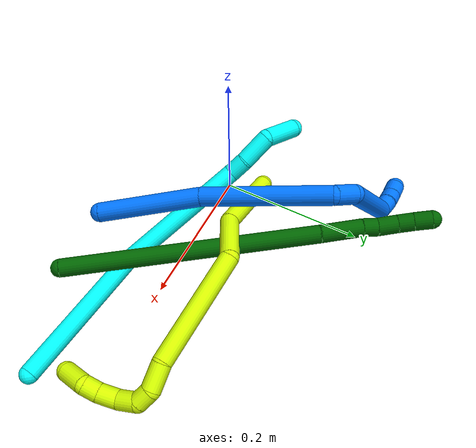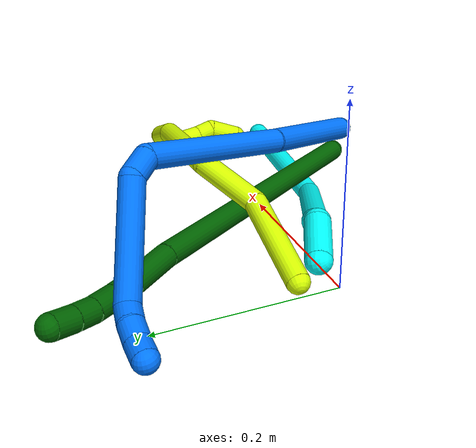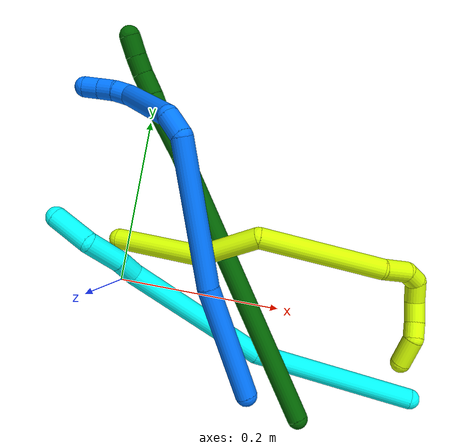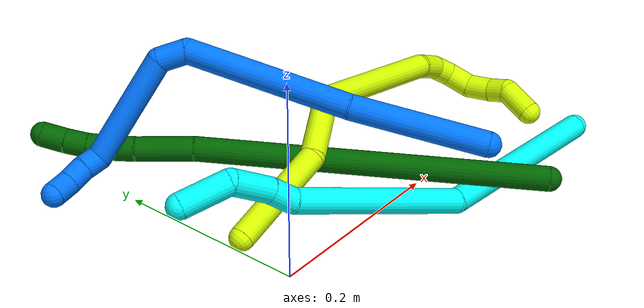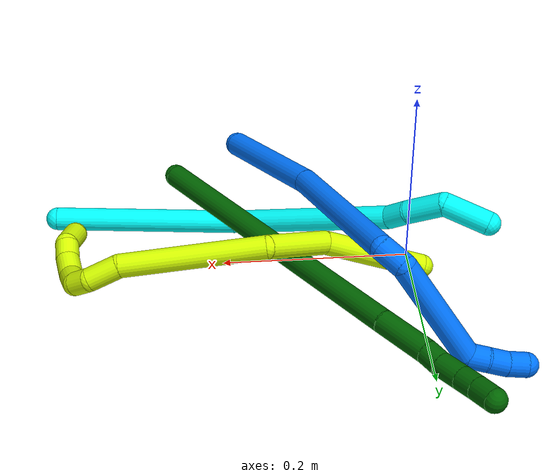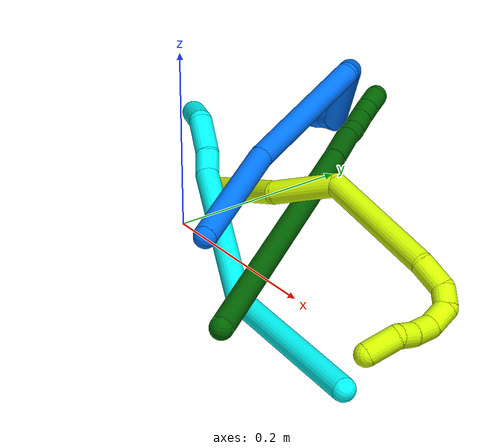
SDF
<sdf version="1.7">
 <world name="default">
  <model name="photoneo_s_sensor">
   <static>1</static>
   <pose>0 0 2 1.57079 1.57079 3.14159</pose>
   <link name="link">
    <inertial><mass>0.1</mass></inertial>
    <sensor name="sensor" type="depth">
     <update_rate>30</update_rate>
     <camera>
      <horizontal_fov>1.22</horizontal_fov>
      <image><width>1920</width><height>1200</height><format>B8G8R8</format></image>
      <clip><near>0.1</near><far>4</far></clip>
      <depth_camera><output>points</output></depth_camera>
     </camera>
     <plugin name="camera_plugin" filename="libgazebo_ros_depth_camera.so">
      <baseline>0.2</baseline>
      <alwaysOn>1</alwaysOn>
      <updateRate>0.0</updateRate>
      <cameraName>camera_ir</cameraName>
      <imageTopicName>/camera/color/image_raw</imageTopicName>
      <cameraInfoTopicName>/camera/color/camera_info</cameraInfoTopicName>
      <depthImageTopicName>/camera/depth/image_raw</depthImageTopicName>
      <depthImageCameraInfoTopicName>/camera/depth/camera_info</depthImageCameraInfoTopicName>
      <pointCloudTopicName>/camera/depth/points</pointCloudTopicName>
      <frameName>fr_optical</frameName>
      <pointCloudCutoff>0.1</pointCloudCutoff>
      <pointCloudCutoffMax>2.0</pointCloudCutoffMax>
      <distortionK1>0</distortionK1>
      <distortionK2>0</distortionK2>
      <distortionK3>0</distortionK3>
      <distortionT1>0</distortionT1>
      <distortionT2>0</distortionT2>
      <CxPrime>0</CxPrime>
      <Cx>0</Cx>
      <Cy>0</Cy>
      <focalLength>0</focalLength>
      <hackBaseline>0</hackBaseline>
     </plugin>
    </sensor>
   </link>
  </model>
  <model name="bin">
   <static>1</static>
   <link name="bottom">
    <collision name="collision-bottom">
     <pose>0 0 -0.01 0 -0 0</pose>
     <geometry><box><size>0.8 0.6 0.02</size></box></geometry>
     <surface>
      <friction><ode><mu>100</mu><mu2>100</mu2></ode></friction>
      <contact><collide_bitmask>65535</collide_bitmask></contact>
     </surface>
    </collision>
   </link>
   <link name="west_wall">
    <collision name="collision-west_wall">
     <pose>-0.41 0 0.1 0 -0 0</pose>
     <geometry><box><size>0.02 0.6 0.2</size></box></geometry>
     <surface>
      <friction><ode><mu>100</mu><mu2>100</mu2></ode></friction>
      <contact><collide_bitmask>65535</collide_bitmask></contact>
     </surface>
    </collision>
   </link>
   <link name="east_wall">
    <collision name="collision-east_wall">
     <pose>0.41 0 0.1 0 -0 0</pose>
     <geometry><box><size>0.02 0.6 0.2</size></box></geometry>
     <surface>
      <friction><ode><mu>100</mu><mu2>100</mu2></ode></friction>
      <contact><collide_bitmask>65535</collide_bitmask></contact>
     </surface>
    </collision>
   </link>
   <link name="south_wall">
    <collision name="collision-south_wall">
     <pose>0 -0.31 0.1 0 -0 0</pose>
     <geometry><box><size>0.8 0.02 0.2</size></box></geometry>
     <surface>
      <friction><ode><mu>100</mu><mu2>100</mu2></ode></friction>
      <contact><collide_bitmask>65535</collide_bitmask></contact>
     </surface>
    </collision>
   </link>
   <link name="north_wall">
    <collision name="collision-north_wall">
     <pose>0 0.31 0.1 0 -0 0</pose>
     <geometry><box><size>0.8 0.02 0.2</size></box></geometry>
     <surface>
      <friction><ode><mu>100</mu><mu2>100</mu2></ode></friction>
      <contact><collide_bitmask>65535</collide_bitmask></contact>
     </surface>
    </collision>
   </link>
  </model>
  <model name="3">
   <static>0</static>
   <link name="3">
    <collision name="collision-cylinder-e_1_1_4">
     <pose>-0.071297 0.021151 -0.065256 -2.82815 -0.804683 2.43051</pose>
     <geometry><cylinder><radius>0.0125</radius><length>0.197879</length></cylinder></geometry>
     <surface>
      <friction><ode><mu>1.16</mu><mu2>1.16</mu2><slip1>0</slip1><slip2>0</slip2></ode></friction>
      <contact><ode><kp>1e+06</kp><kd>1</kd><max_vel>0</max_vel><min_depth>0.001</min_depth></ode></contact>
     </surface>
    </collision>
    <visual name="visual-cylinder-e_1_1_4">
     <pose>-0.071297 0.021151 -0.065256 -2.82815 -0.804683 2.43051</pose>
     <geometry><cylinder><radius>0.0125</radius><length>0.197879</length></cylinder></geometry>
     <material><ambient>0.003922 1 0.996078 1</ambient></material>
    </visual>
    <collision name="collision-cylinder-e_2_4_5">
     <pose>-0.219362 0.02534 -0.177843 2.79746 -0.990959 -2.51936</pose>
     <geometry><cylinder><radius>0.0125</radius><length>0.183535</length></cylinder></geometry>
     <surface>
      <friction><ode><mu>1.16</mu><mu2>1.16</mu2><slip1>0</slip1><slip2>0</slip2></ode></friction>
      <contact><ode><kp>1e+06</kp><kd>1</kd><max_vel>0</max_vel><min_depth>0.001</min_depth></ode></contact>
     </surface>
    </collision>
    <visual name="visual-cylinder-e_2_4_5">
     <pose>-0.219362 0.02534 -0.177843 2.79746 -0.990959 -2.51936</pose>
     <geometry><cylinder><radius>0.0125</radius><length>0.183535</length></cylinder></geometry>
     <material><ambient>0.003922 1 0.996078 1</ambient></material>
    </visual>
    <collision name="collision-cylinder-e_3_5_6">
     <pose>-0.305555 0.001504 -0.230858 2.26185 -0.812927 -1.48165</pose>
     <geometry><cylinder><radius>0.0125</radius><length>0.025951</length></cylinder></geometry>
     <surface>
      <friction><ode><mu>1.16</mu><mu2>1.16</mu2><slip1>0</slip1><slip2>0</slip2></ode></friction>
      <contact><ode><kp>1e+06</kp><kd>1</kd><max_vel>0</max_vel><min_depth>0.001</min_depth></ode></contact>
     </surface>
    </collision>
    <visual name="visual-cylinder-e_3_5_6">
     <pose>-0.305555 0.001504 -0.230858 2.26185 -0.812927 -1.48165</pose>
     <geometry><cylinder><radius>0.0125</radius><length>0.025951</length></cylinder></geometry>
     <material><ambient>0.003922 1 0.996078 1</ambient></material>
    </visual>
    <collision name="collision-cylinder-e_4_6_7">
     <pose>-0.33101 -0.012935 -0.248658 2.58334 -0.842978 -2.00405</pose>
     <geometry><cylinder><radius>0.0125</radius><length>0.042944</length></cylinder></geometry>
     <surface>
      <friction><ode><mu>1.16</mu><mu2>1.16</mu2><slip1>0</slip1><slip2>0</slip2></ode></friction>
      <contact><ode><kp>1e+06</kp><kd>1</kd><max_vel>0</max_vel><min_depth>0.001</min_depth></ode></contact>
     </surface>
    </collision>
    <visual name="visual-cylinder-e_4_6_7">
     <pose>-0.33101 -0.012935 -0.248658 2.58334 -0.842978 -2.00405</pose>
     <geometry><cylinder><radius>0.0125</radius><length>0.042944</length></cylinder></geometry>
     <material><ambient>0.003922 1 0.996078 1</ambient></material>
    </visual>
    <collision name="collision-cylinder-e_5_7_2">
     <pose>-0.36965 -0.013326 -0.268169 -2.37133 -1.14314 2.01685</pose>
     <geometry><cylinder><radius>0.0125</radius><length>0.049691</length></cylinder></geometry>
     <surface>
      <friction><ode><mu>1.16</mu><mu2>1.16</mu2><slip1>0</slip1><slip2>0</slip2></ode></friction>
      <contact><ode><kp>1e+06</kp><kd>1</kd><max_vel>0</max_vel><min_depth>0.001</min_depth></ode></contact>
     </surface>
    </collision>
    <visual name="visual-cylinder-e_5_7_2">
     <pose>-0.36965 -0.013326 -0.268169 -2.37133 -1.14314 2.01685</pose>
     <geometry><cylinder><radius>0.0125</radius><length>0.049691</length></cylinder></geometry>
     <material><ambient>0.003922 1 0.996078 1</ambient></material>
    </visual>
    <collision name="collision-sphere-2">
     <pose>-0.392258 -0.006151 -0.275565 0 -0 0</pose>
     <geometry><sphere><radius>0.0125</radius></sphere></geometry>
     <surface>
      <friction><ode><mu>1.16</mu><mu2>1.16</mu2><slip1>0</slip1><slip2>0</slip2></ode></friction>
      <contact><ode><kp>1e+06</kp><kd>1</kd><max_vel>0</max_vel><min_depth>0.001</min_depth></ode></contact>
     </surface>
    </collision>
    <visual name="visual-sphere-2">
     <pose>-0.392258 -0.006151 -0.275565 0 -0 0</pose>
     <geometry><sphere><radius>0.0125</radius></sphere></geometry>
     <material><ambient>0.003922 1 0.996078 1</ambient></material>
    </visual>
    <collision name="collision-sphere-7">
     <pose>-0.347042 -0.020501 -0.260774 0 -0 0</pose>
     <geometry><sphere><radius>0.0125</radius></sphere></geometry>
     <surface>
      <friction><ode><mu>1.16</mu><mu2>1.16</mu2><slip1>0</slip1><slip2>0</slip2></ode></friction>
      <contact><ode><kp>1e+06</kp><kd>1</kd><max_vel>0</max_vel><min_depth>0.001</min_depth></ode></contact>
     </surface>
    </collision>
    <visual name="visual-sphere-7">
     <pose>-0.347042 -0.020501 -0.260774 0 -0 0</pose>
     <geometry><sphere><radius>0.0125</radius></sphere></geometry>
     <material><ambient>0.003922 1 0.996078 1</ambient></material>
    </visual>
    <collision name="collision-sphere-6">
     <pose>-0.314979 -0.005369 -0.236543 0 -0 0</pose>
     <geometry><sphere><radius>0.0125</radius></sphere></geometry>
     <surface>
      <friction><ode><mu>1.16</mu><mu2>1.16</mu2><slip1>0</slip1><slip2>0</slip2></ode></friction>
      <contact><ode><kp>1e+06</kp><kd>1</kd><max_vel>0</max_vel><min_depth>0.001</min_depth></ode></contact>
     </surface>
    </collision>
    <visual name="visual-sphere-6">
     <pose>-0.314979 -0.005369 -0.236543 0 -0 0</pose>
     <geometry><sphere><radius>0.0125</radius></sphere></geometry>
     <material><ambient>0.003922 1 0.996078 1</ambient></material>
    </visual>
    <collision name="collision-sphere-5">
     <pose>-0.296131 0.008377 -0.225174 0 -0 0</pose>
     <geometry><sphere><radius>0.0125</radius></sphere></geometry>
     <surface>
      <friction><ode><mu>1.16</mu><mu2>1.16</mu2><slip1>0</slip1><slip2>0</slip2></ode></friction>
      <contact><ode><kp>1e+06</kp><kd>1</kd><max_vel>0</max_vel><min_depth>0.001</min_depth></ode></contact>
     </surface>
    </collision>
    <visual name="visual-sphere-5">
     <pose>-0.296131 0.008377 -0.225174 0 -0 0</pose>
     <geometry><sphere><radius>0.0125</radius></sphere></geometry>
     <material><ambient>0.003922 1 0.996078 1</ambient></material>
    </visual>
    <collision name="collision-sphere-1">
     <geometry><sphere><radius>0.0125</radius></sphere></geometry>
     <surface>
      <friction><ode><mu>1.16</mu><mu2>1.16</mu2><slip1>0</slip1><slip2>0</slip2></ode></friction>
      <contact><ode><kp>1e+06</kp><kd>1</kd><max_vel>0</max_vel><min_depth>0.001</min_depth></ode></contact>
     </surface>
    </collision>
    <visual name="visual-sphere-1">
     <geometry><sphere><radius>0.0125</radius></sphere></geometry>
     <material><ambient>0.003922 1 0.996078 1</ambient></material>
    </visual>
    <collision name="collision-sphere-4">
     <pose>-0.142594 0.042303 -0.130513 0 -0 0</pose>
     <geometry><sphere><radius>0.0125</radius></sphere></geometry>
     <surface>
      <friction><ode><mu>1.16</mu><mu2>1.16</mu2><slip1>0</slip1><slip2>0</slip2></ode></friction>
      <contact><ode><kp>1e+06</kp><kd>1</kd><max_vel>0</max_vel><min_depth>0.001</min_depth></ode></contact>
     </surface>
    </collision>
    <visual name="visual-sphere-4">
     <pose>-0.142594 0.042303 -0.130513 0 -0 0</pose>
     <geometry><sphere><radius>0.0125</radius></sphere></geometry>
     <material><ambient>0.003922 1 0.996078 1</ambient></material>
    </visual>
    <inertial>
     <pose>-0.189763 0.015315 -0.151097 0 -0 0</pose>
     <mass>0.5</mass>
     <inertia>
      <ixx>-0.000484</ixx>
      <ixy>0</ixy>
      <ixz>0</ixz>
      <iyy>0.001195</iyy>
      <iyz>0</iyz>
      <izz>0.000863</izz>
     </inertia>
    </inertial>
   </link>
   <pose>0.380726 -0.077654 0.012695 -1.98545 -0.105315 -0.859708</pose>
  </model>
  <model name="6">
   <static>0</static>
   <link name="6">
    <collision name="collision-cylinder-e_1_1_4">
     <pose>-0.096078 0.133636 0.056171 -1.17289 -0.585312 0.395165</pose>
     <geometry><cylinder><radius>0.0125</radius><length>0.34782</length></cylinder></geometry>
     <surface>
      <friction><ode><mu>1.16</mu><mu2>1.16</mu2><slip1>0</slip1><slip2>0</slip2></ode></friction>
      <contact><ode><kp>1e+06</kp><kd>1</kd><max_vel>0</max_vel><min_depth>0.001</min_depth></ode></contact>
     </surface>
    </collision>
    <visual name="visual-cylinder-e_1_1_4">
     <pose>-0.096078 0.133636 0.056171 -1.17289 -0.585312 0.395165</pose>
     <geometry><cylinder><radius>0.0125</radius><length>0.34782</length></cylinder></geometry>
     <material><ambient>0 0.392157 0.003922 1</ambient></material>
    </visual>
    <collision name="collision-cylinder-e_2_4_5">
     <pose>-0.209868 0.288998 0.119726 -1.24315 -0.657322 0.47917</pose>
     <geometry><cylinder><radius>0.0125</radius><length>0.057974</length></cylinder></geometry>
     <surface>
      <friction><ode><mu>1.16</mu><mu2>1.16</mu2><slip1>0</slip1><slip2>0</slip2></ode></friction>
      <contact><ode><kp>1e+06</kp><kd>1</kd><max_vel>0</max_vel><min_depth>0.001</min_depth></ode></contact>
     </surface>
    </collision>
    <visual name="visual-cylinder-e_2_4_5">
     <pose>-0.209868 0.288998 0.119726 -1.24315 -0.657322 0.47917</pose>
     <geometry><cylinder><radius>0.0125</radius><length>0.057974</length></cylinder></geometry>
     <material><ambient>0 0.392157 0.003922 1</ambient></material>
    </visual>
    <collision name="collision-cylinder-e_3_5_6">
     <pose>-0.232943 0.319147 0.129603 -1.28316 -0.548261 0.414109</pose>
     <geometry><cylinder><radius>0.0125</radius><length>0.020584</length></cylinder></geometry>
     <surface>
      <friction><ode><mu>1.16</mu><mu2>1.16</mu2><slip1>0</slip1><slip2>0</slip2></ode></friction>
      <contact><ode><kp>1e+06</kp><kd>1</kd><max_vel>0</max_vel><min_depth>0.001</min_depth></ode></contact>
     </surface>
    </collision>
    <visual name="visual-cylinder-e_3_5_6">
     <pose>-0.232943 0.319147 0.129603 -1.28316 -0.548261 0.414109</pose>
     <geometry><cylinder><radius>0.0125</radius><length>0.020584</length></cylinder></geometry>
     <material><ambient>0 0.392157 0.003922 1</ambient></material>
    </visual>
    <collision name="collision-cylinder-e_4_6_7">
     <pose>-0.246078 0.337993 0.136885 -1.13995 -0.595391 0.388337</pose>
     <geometry><cylinder><radius>0.0125</radius><length>0.027712</length></cylinder></geometry>
     <surface>
      <friction><ode><mu>1.16</mu><mu2>1.16</mu2><slip1>0</slip1><slip2>0</slip2></ode></friction>
      <contact><ode><kp>1e+06</kp><kd>1</kd><max_vel>0</max_vel><min_depth>0.001</min_depth></ode></contact>
     </surface>
    </collision>
    <visual name="visual-cylinder-e_4_6_7">
     <pose>-0.246078 0.337993 0.136885 -1.13995 -0.595391 0.388337</pose>
     <geometry><cylinder><radius>0.0125</radius><length>0.027712</length></cylinder></geometry>
     <material><ambient>0 0.392157 0.003922 1</ambient></material>
    </visual>
    <collision name="collision-cylinder-e_5_7_8">
     <pose>-0.259108 0.356732 0.146391 -1.05505 -0.502956 0.297151</pose>
     <geometry><cylinder><radius>0.0125</radius><length>0.021821</length></cylinder></geometry>
     <surface>
      <friction><ode><mu>1.16</mu><mu2>1.16</mu2><slip1>0</slip1><slip2>0</slip2></ode></friction>
      <contact><ode><kp>1e+06</kp><kd>1</kd><max_vel>0</max_vel><min_depth>0.001</min_depth></ode></contact>
     </surface>
    </collision>
    <visual name="visual-cylinder-e_5_7_8">
     <pose>-0.259108 0.356732 0.146391 -1.05505 -0.502956 0.297151</pose>
     <geometry><cylinder><radius>0.0125</radius><length>0.021821</length></cylinder></geometry>
     <material><ambient>0 0.392157 0.003922 1</ambient></material>
    </visual>
    <collision name="collision-cylinder-e_6_8_2">
     <pose>-0.269537 0.374383 0.156691 -1.0316 -0.443687 0.254399</pose>
     <geometry><cylinder><radius>0.0125</radius><length>0.024089</length></cylinder></geometry>
     <surface>
      <friction><ode><mu>1.16</mu><mu2>1.16</mu2><slip1>0</slip1><slip2>0</slip2></ode></friction>
      <contact><ode><kp>1e+06</kp><kd>1</kd><max_vel>0</max_vel><min_depth>0.001</min_depth></ode></contact>
     </surface>
    </collision>
    <visual name="visual-cylinder-e_6_8_2">
     <pose>-0.269537 0.374383 0.156691 -1.0316 -0.443687 0.254399</pose>
     <geometry><cylinder><radius>0.0125</radius><length>0.024089</length></cylinder></geometry>
     <material><ambient>0 0.392157 0.003922 1</ambient></material>
    </visual>
    <collision name="collision-sphere-2">
     <pose>-0.274708 0.383718 0.162276 0 -0 0</pose>
     <geometry><sphere><radius>0.0125</radius></sphere></geometry>
     <surface>
      <friction><ode><mu>1.16</mu><mu2>1.16</mu2><slip1>0</slip1><slip2>0</slip2></ode></friction>
      <contact><ode><kp>1e+06</kp><kd>1</kd><max_vel>0</max_vel><min_depth>0.001</min_depth></ode></contact>
     </surface>
    </collision>
    <visual name="visual-sphere-2">
     <pose>-0.274708 0.383718 0.162276 0 -0 0</pose>
     <geometry><sphere><radius>0.0125</radius></sphere></geometry>
     <material><ambient>0 0.392157 0.003922 1</ambient></material>
    </visual>
    <collision name="collision-sphere-4">
     <pose>-0.192156 0.267271 0.112342 0 -0 0</pose>
     <geometry><sphere><radius>0.0125</radius></sphere></geometry>
     <surface>
      <friction><ode><mu>1.16</mu><mu2>1.16</mu2><slip1>0</slip1><slip2>0</slip2></ode></friction>
      <contact><ode><kp>1e+06</kp><kd>1</kd><max_vel>0</max_vel><min_depth>0.001</min_depth></ode></contact>
     </surface>
    </collision>
    <visual name="visual-sphere-4">
     <pose>-0.192156 0.267271 0.112342 0 -0 0</pose>
     <geometry><sphere><radius>0.0125</radius></sphere></geometry>
     <material><ambient>0 0.392157 0.003922 1</ambient></material>
    </visual>
    <collision name="collision-sphere-1">
     <geometry><sphere><radius>0.0125</radius></sphere></geometry>
     <surface>
      <friction><ode><mu>1.16</mu><mu2>1.16</mu2><slip1>0</slip1><slip2>0</slip2></ode></friction>
      <contact><ode><kp>1e+06</kp><kd>1</kd><max_vel>0</max_vel><min_depth>0.001</min_depth></ode></contact>
     </surface>
    </collision>
    <visual name="visual-sphere-1">
     <geometry><sphere><radius>0.0125</radius></sphere></geometry>
     <material><ambient>0 0.392157 0.003922 1</ambient></material>
    </visual>
    <collision name="collision-sphere-8">
     <pose>-0.264367 0.365048 0.151106 0 -0 0</pose>
     <geometry><sphere><radius>0.0125</radius></sphere></geometry>
     <surface>
      <friction><ode><mu>1.16</mu><mu2>1.16</mu2><slip1>0</slip1><slip2>0</slip2></ode></friction>
      <contact><ode><kp>1e+06</kp><kd>1</kd><max_vel>0</max_vel><min_depth>0.001</min_depth></ode></contact>
     </surface>
    </collision>
    <visual name="visual-sphere-8">
     <pose>-0.264367 0.365048 0.151106 0 -0 0</pose>
     <geometry><sphere><radius>0.0125</radius></sphere></geometry>
     <material><ambient>0 0.392157 0.003922 1</ambient></material>
    </visual>
    <collision name="collision-sphere-5">
     <pose>-0.227579 0.310724 0.127111 0 -0 0</pose>
     <geometry><sphere><radius>0.0125</radius></sphere></geometry>
     <surface>
      <friction><ode><mu>1.16</mu><mu2>1.16</mu2><slip1>0</slip1><slip2>0</slip2></ode></friction>
      <contact><ode><kp>1e+06</kp><kd>1</kd><max_vel>0</max_vel><min_depth>0.001</min_depth></ode></contact>
     </surface>
    </collision>
    <visual name="visual-sphere-5">
     <pose>-0.227579 0.310724 0.127111 0 -0 0</pose>
     <geometry><sphere><radius>0.0125</radius></sphere></geometry>
     <material><ambient>0 0.392157 0.003922 1</ambient></material>
    </visual>
    <collision name="collision-sphere-6">
     <pose>-0.238307 0.32757 0.132094 0 -0 0</pose>
     <geometry><sphere><radius>0.0125</radius></sphere></geometry>
     <surface>
      <friction><ode><mu>1.16</mu><mu2>1.16</mu2><slip1>0</slip1><slip2>0</slip2></ode></friction>
      <contact><ode><kp>1e+06</kp><kd>1</kd><max_vel>0</max_vel><min_depth>0.001</min_depth></ode></contact>
     </surface>
    </collision>
    <visual name="visual-sphere-6">
     <pose>-0.238307 0.32757 0.132094 0 -0 0</pose>
     <geometry><sphere><radius>0.0125</radius></sphere></geometry>
     <material><ambient>0 0.392157 0.003922 1</ambient></material>
    </visual>
    <collision name="collision-sphere-7">
     <pose>-0.253849 0.348416 0.141677 0 -0 0</pose>
     <geometry><sphere><radius>0.0125</radius></sphere></geometry>
     <surface>
      <friction><ode><mu>1.16</mu><mu2>1.16</mu2><slip1>0</slip1><slip2>0</slip2></ode></friction>
      <contact><ode><kp>1e+06</kp><kd>1</kd><max_vel>0</max_vel><min_depth>0.001</min_depth></ode></contact>
     </surface>
    </collision>
    <visual name="visual-sphere-7">
     <pose>-0.253849 0.348416 0.141677 0 -0 0</pose>
     <geometry><sphere><radius>0.0125</radius></sphere></geometry>
     <material><ambient>0 0.392157 0.003922 1</ambient></material>
    </visual>
    <inertial>
     <pose>-0.138692 0.191948 0.079817 0 -0 0</pose>
     <mass>0.5</mass>
     <inertia>
      <ixx>0.003845</ixx>
      <ixy>0</ixy>
      <ixz>0</ixz>
      <iyy>0.003133</iyy>
      <iyz>0</iyz>
      <izz>-0.000752</izz>
     </inertia>
    </inertial>
   </link>
   <pose>0.246778 -0.123076 0.031665 -0.267857 -0.100233 0.005009</pose>
  </model>
  <model name="14">
   <static>0</static>
   <link name="14">
    <collision name="collision-cylinder-e_1_1_4">
     <pose>-0.003034 0.062284 0.023144 -1.21502 -0.045628 0.031724</pose>
     <geometry><cylinder><radius>0.0125</radius><length>0.133028</length></cylinder></geometry>
     <surface>
      <friction><ode><mu>1.16</mu><mu2>1.16</mu2><slip1>0</slip1><slip2>0</slip2></ode></friction>
      <contact><ode><kp>1e+06</kp><kd>1</kd><max_vel>0</max_vel><min_depth>0.001</min_depth></ode></contact>
     </surface>
    </collision>
    <visual name="visual-cylinder-e_1_1_4">
     <pose>-0.003034 0.062284 0.023144 -1.21502 -0.045628 0.031724</pose>
     <geometry><cylinder><radius>0.0125</radius><length>0.133028</length></cylinder></geometry>
     <material><ambient>0 0.462745 1 1</ambient></material>
    </visual>
    <collision name="collision-cylinder-e_2_4_5">
     <pose>0.003572 0.20175 0.075182 -1.21258 0.116437 -0.080785</pose>
     <geometry><cylinder><radius>0.0125</radius><length>0.165951</length></cylinder></geometry>
     <surface>
      <friction><ode><mu>1.16</mu><mu2>1.16</mu2><slip1>0</slip1><slip2>0</slip2></ode></friction>
      <contact><ode><kp>1e+06</kp><kd>1</kd><max_vel>0</max_vel><min_depth>0.001</min_depth></ode></contact>
     </surface>
    </collision>
    <visual name="visual-cylinder-e_2_4_5">
     <pose>0.003572 0.20175 0.075182 -1.21258 0.116437 -0.080785</pose>
     <geometry><cylinder><radius>0.0125</radius><length>0.165951</length></cylinder></geometry>
     <material><ambient>0 0.462745 1 1</ambient></material>
    </visual>
    <collision name="collision-cylinder-e_3_5_6">
     <pose>0.009877 0.292582 0.101411 -1.76366 -0.235301 0.285077</pose>
     <geometry><cylinder><radius>0.0125</radius><length>0.028604</length></cylinder></geometry>
     <surface>
      <friction><ode><mu>1.16</mu><mu2>1.16</mu2><slip1>0</slip1><slip2>0</slip2></ode></friction>
      <contact><ode><kp>1e+06</kp><kd>1</kd><max_vel>0</max_vel><min_depth>0.001</min_depth></ode></contact>
     </surface>
    </collision>
    <visual name="visual-cylinder-e_3_5_6">
     <pose>0.009877 0.292582 0.101411 -1.76366 -0.235301 0.285077</pose>
     <geometry><cylinder><radius>0.0125</radius><length>0.028604</length></cylinder></geometry>
     <material><ambient>0 0.462745 1 1</ambient></material>
    </visual>
    <collision name="collision-cylinder-e_4_6_7">
     <pose>-0.008201 0.339768 0.056118 -2.475 -0.26542 0.736041</pose>
     <geometry><cylinder><radius>0.0125</radius><length>0.112414</length></cylinder></geometry>
     <surface>
      <friction><ode><mu>1.16</mu><mu2>1.16</mu2><slip1>0</slip1><slip2>0</slip2></ode></friction>
      <contact><ode><kp>1e+06</kp><kd>1</kd><max_vel>0</max_vel><min_depth>0.001</min_depth></ode></contact>
     </surface>
    </collision>
    <visual name="visual-cylinder-e_4_6_7">
     <pose>-0.008201 0.339768 0.056118 -2.475 -0.26542 0.736041</pose>
     <geometry><cylinder><radius>0.0125</radius><length>0.112414</length></cylinder></geometry>
     <material><ambient>0 0.462745 1 1</ambient></material>
    </visual>
    <collision name="collision-cylinder-e_5_7_8">
     <pose>-0.030473 0.379483 0.011218 -1.92312 -0.852291 1.15356</pose>
     <geometry><cylinder><radius>0.0125</radius><length>0.020001</length></cylinder></geometry>
     <surface>
      <friction><ode><mu>1.16</mu><mu2>1.16</mu2><slip1>0</slip1><slip2>0</slip2></ode></friction>
      <contact><ode><kp>1e+06</kp><kd>1</kd><max_vel>0</max_vel><min_depth>0.001</min_depth></ode></contact>
     </surface>
    </collision>
    <visual name="visual-cylinder-e_5_7_8">
     <pose>-0.030473 0.379483 0.011218 -1.92312 -0.852291 1.15356</pose>
     <geometry><cylinder><radius>0.0125</radius><length>0.020001</length></cylinder></geometry>
     <material><ambient>0 0.462745 1 1</ambient></material>
    </visual>
    <collision name="collision-cylinder-e_6_8_9">
     <pose>-0.04585 0.390747 0.005402 -2.17949 -0.902335 1.4964</pose>
     <geometry><cylinder><radius>0.0125</radius><length>0.020002</length></cylinder></geometry>
     <surface>
      <friction><ode><mu>1.16</mu><mu2>1.16</mu2><slip1>0</slip1><slip2>0</slip2></ode></friction>
      <contact><ode><kp>1e+06</kp><kd>1</kd><max_vel>0</max_vel><min_depth>0.001</min_depth></ode></contact>
     </surface>
    </collision>
    <visual name="visual-cylinder-e_6_8_9">
     <pose>-0.04585 0.390747 0.005402 -2.17949 -0.902335 1.4964</pose>
     <geometry><cylinder><radius>0.0125</radius><length>0.020002</length></cylinder></geometry>
     <material><ambient>0 0.462745 1 1</ambient></material>
    </visual>
    <collision name="collision-cylinder-e_7_9_2">
     <pose>-0.062259 0.40057 -0.000211 -1.98239 -1.02749 1.42287</pose>
     <geometry><cylinder><radius>0.0125</radius><length>0.020001</length></cylinder></geometry>
     <surface>
      <friction><ode><mu>1.16</mu><mu2>1.16</mu2><slip1>0</slip1><slip2>0</slip2></ode></friction>
      <contact><ode><kp>1e+06</kp><kd>1</kd><max_vel>0</max_vel><min_depth>0.001</min_depth></ode></contact>
     </surface>
    </collision>
    <visual name="visual-cylinder-e_7_9_2">
     <pose>-0.062259 0.40057 -0.000211 -1.98239 -1.02749 1.42287</pose>
     <geometry><cylinder><radius>0.0125</radius><length>0.020001</length></cylinder></geometry>
     <material><ambient>0 0.462745 1 1</ambient></material>
    </visual>
    <collision name="collision-sphere-2">
     <pose>-0.070819 0.405308 -0.002279 0 -0 0</pose>
     <geometry><sphere><radius>0.0125</radius></sphere></geometry>
     <surface>
      <friction><ode><mu>1.16</mu><mu2>1.16</mu2><slip1>0</slip1><slip2>0</slip2></ode></friction>
      <contact><ode><kp>1e+06</kp><kd>1</kd><max_vel>0</max_vel><min_depth>0.001</min_depth></ode></contact>
     </surface>
    </collision>
    <visual name="visual-sphere-2">
     <pose>-0.070819 0.405308 -0.002279 0 -0 0</pose>
     <geometry><sphere><radius>0.0125</radius></sphere></geometry>
     <material><ambient>0 0.462745 1 1</ambient></material>
    </visual>
    <collision name="collision-sphere-9">
     <pose>-0.053698 0.395832 0.001858 0 -0 0</pose>
     <geometry><sphere><radius>0.0125</radius></sphere></geometry>
     <surface>
      <friction><ode><mu>1.16</mu><mu2>1.16</mu2><slip1>0</slip1><slip2>0</slip2></ode></friction>
      <contact><ode><kp>1e+06</kp><kd>1</kd><max_vel>0</max_vel><min_depth>0.001</min_depth></ode></contact>
     </surface>
    </collision>
    <visual name="visual-sphere-9">
     <pose>-0.053698 0.395832 0.001858 0 -0 0</pose>
     <geometry><sphere><radius>0.0125</radius></sphere></geometry>
     <material><ambient>0 0.462745 1 1</ambient></material>
    </visual>
    <collision name="collision-sphere-4">
     <pose>-0.006068 0.124567 0.046287 0 -0 0</pose>
     <geometry><sphere><radius>0.0125</radius></sphere></geometry>
     <surface>
      <friction><ode><mu>1.16</mu><mu2>1.16</mu2><slip1>0</slip1><slip2>0</slip2></ode></friction>
      <contact><ode><kp>1e+06</kp><kd>1</kd><max_vel>0</max_vel><min_depth>0.001</min_depth></ode></contact>
     </surface>
    </collision>
    <visual name="visual-sphere-4">
     <pose>-0.006068 0.124567 0.046287 0 -0 0</pose>
     <geometry><sphere><radius>0.0125</radius></sphere></geometry>
     <material><ambient>0 0.462745 1 1</ambient></material>
    </visual>
    <collision name="collision-sphere-1">
     <geometry><sphere><radius>0.0125</radius></sphere></geometry>
     <surface>
      <friction><ode><mu>1.16</mu><mu2>1.16</mu2><slip1>0</slip1><slip2>0</slip2></ode></friction>
      <contact><ode><kp>1e+06</kp><kd>1</kd><max_vel>0</max_vel><min_depth>0.001</min_depth></ode></contact>
     </surface>
    </collision>
    <visual name="visual-sphere-1">
     <geometry><sphere><radius>0.0125</radius></sphere></geometry>
     <material><ambient>0 0.462745 1 1</ambient></material>
    </visual>
    <collision name="collision-sphere-8">
     <pose>-0.038002 0.385662 0.008946 0 -0 0</pose>
     <geometry><sphere><radius>0.0125</radius></sphere></geometry>
     <surface>
      <friction><ode><mu>1.16</mu><mu2>1.16</mu2><slip1>0</slip1><slip2>0</slip2></ode></friction>
      <contact><ode><kp>1e+06</kp><kd>1</kd><max_vel>0</max_vel><min_depth>0.001</min_depth></ode></contact>
     </surface>
    </collision>
    <visual name="visual-sphere-8">
     <pose>-0.038002 0.385662 0.008946 0 -0 0</pose>
     <geometry><sphere><radius>0.0125</radius></sphere></geometry>
     <material><ambient>0 0.462745 1 1</ambient></material>
    </visual>
    <collision name="collision-sphere-5">
     <pose>0.013211 0.278932 0.104077 0 -0 0</pose>
     <geometry><sphere><radius>0.0125</radius></sphere></geometry>
     <surface>
      <friction><ode><mu>1.16</mu><mu2>1.16</mu2><slip1>0</slip1><slip2>0</slip2></ode></friction>
      <contact><ode><kp>1e+06</kp><kd>1</kd><max_vel>0</max_vel><min_depth>0.001</min_depth></ode></contact>
     </surface>
    </collision>
    <visual name="visual-sphere-5">
     <pose>0.013211 0.278932 0.104077 0 -0 0</pose>
     <geometry><sphere><radius>0.0125</radius></sphere></geometry>
     <material><ambient>0 0.462745 1 1</ambient></material>
    </visual>
    <collision name="collision-sphere-6">
     <pose>0.006543 0.306232 0.098746 0 -0 0</pose>
     <geometry><sphere><radius>0.0125</radius></sphere></geometry>
     <surface>
      <friction><ode><mu>1.16</mu><mu2>1.16</mu2><slip1>0</slip1><slip2>0</slip2></ode></friction>
      <contact><ode><kp>1e+06</kp><kd>1</kd><max_vel>0</max_vel><min_depth>0.001</min_depth></ode></contact>
     </surface>
    </collision>
    <visual name="visual-sphere-6">
     <pose>0.006543 0.306232 0.098746 0 -0 0</pose>
     <geometry><sphere><radius>0.0125</radius></sphere></geometry>
     <material><ambient>0 0.462745 1 1</ambient></material>
    </visual>
    <collision name="collision-sphere-7">
     <pose>-0.022945 0.373305 0.013489 0 -0 0</pose>
     <geometry><sphere><radius>0.0125</radius></sphere></geometry>
     <surface>
      <friction><ode><mu>1.16</mu><mu2>1.16</mu2><slip1>0</slip1><slip2>0</slip2></ode></friction>
      <contact><ode><kp>1e+06</kp><kd>1</kd><max_vel>0</max_vel><min_depth>0.001</min_depth></ode></contact>
     </surface>
    </collision>
    <visual name="visual-sphere-7">
     <pose>-0.022945 0.373305 0.013489 0 -0 0</pose>
     <geometry><sphere><radius>0.0125</radius></sphere></geometry>
     <material><ambient>0 0.462745 1 1</ambient></material>
    </visual>
    <inertial>
     <pose>-0.006444 0.223494 0.050185 0 -0 0</pose>
     <mass>0.5</mass>
     <inertia>
      <ixx>0.000728</ixx>
      <ixy>0</ixy>
      <ixz>0</ixz>
      <iyy>0.000243</iyy>
      <iyz>0</iyz>
      <izz>-0.000627</izz>
     </inertia>
    </inertial>
   </link>
   <pose>0.177669 -0.092916 0.09216 -0.150094 0.11921 0.491462</pose>
  </model>
  <model name="15">
   <static>0</static>
   <link name="15">
    <collision name="collision-cylinder-e_1_1_4">
     <pose>0.007873 0.002359 0.054168 -0.043528 0.144198 -0.003144</pose>
     <geometry><cylinder><radius>0.0125</radius><length>0.109576</length></cylinder></geometry>
     <surface>
      <friction><ode><mu>1.16</mu><mu2>1.16</mu2><slip1>0</slip1><slip2>0</slip2></ode></friction>
      <contact><ode><kp>1e+06</kp><kd>1</kd><max_vel>0</max_vel><min_depth>0.001</min_depth></ode></contact>
     </surface>
    </collision>
    <visual name="visual-cylinder-e_1_1_4">
     <pose>0.007873 0.002359 0.054168 -0.043528 0.144198 -0.003144</pose>
     <geometry><cylinder><radius>0.0125</radius><length>0.109576</length></cylinder></geometry>
     <material><ambient>0.835294 1 0 1</ambient></material>
    </visual>
    <collision name="collision-cylinder-e_2_4_5">
     <pose>0.03144 0.018647 0.139355 -0.422053 0.432425 -0.094034</pose>
     <geometry><cylinder><radius>0.0125</radius><length>0.074898</length></cylinder></geometry>
     <surface>
      <friction><ode><mu>1.16</mu><mu2>1.16</mu2><slip1>0</slip1><slip2>0</slip2></ode></friction>
      <contact><ode><kp>1e+06</kp><kd>1</kd><max_vel>0</max_vel><min_depth>0.001</min_depth></ode></contact>
     </surface>
    </collision>
    <visual name="visual-cylinder-e_2_4_5">
     <pose>0.03144 0.018647 0.139355 -0.422053 0.432425 -0.094034</pose>
     <geometry><cylinder><radius>0.0125</radius><length>0.074898</length></cylinder></geometry>
     <material><ambient>0.835294 1 0 1</ambient></material>
    </visual>
    <collision name="collision-cylinder-e_3_5_6">
     <pose>0.079613 0.00706 0.234058 0.381073 0.44216 0.086645</pose>
     <geometry><cylinder><radius>0.0125</radius><length>0.151812</length></cylinder></geometry>
     <surface>
      <friction><ode><mu>1.16</mu><mu2>1.16</mu2><slip1>0</slip1><slip2>0</slip2></ode></friction>
      <contact><ode><kp>1e+06</kp><kd>1</kd><max_vel>0</max_vel><min_depth>0.001</min_depth></ode></contact>
     </surface>
    </collision>
    <visual name="visual-cylinder-e_3_5_6">
     <pose>0.079613 0.00706 0.234058 0.381073 0.44216 0.086645</pose>
     <geometry><cylinder><radius>0.0125</radius><length>0.151812</length></cylinder></geometry>
     <material><ambient>0.835294 1 0 1</ambient></material>
    </visual>
    <collision name="collision-cylinder-e_4_6_7">
     <pose>0.123182 -0.025722 0.30863 0.5885 0.702871 0.22132</pose>
     <geometry><cylinder><radius>0.0125</radius><length>0.03431</length></cylinder></geometry>
     <surface>
      <friction><ode><mu>1.16</mu><mu2>1.16</mu2><slip1>0</slip1><slip2>0</slip2></ode></friction>
      <contact><ode><kp>1e+06</kp><kd>1</kd><max_vel>0</max_vel><min_depth>0.001</min_depth></ode></contact>
     </surface>
    </collision>
    <visual name="visual-cylinder-e_4_6_7">
     <pose>0.123182 -0.025722 0.30863 0.5885 0.702871 0.22132</pose>
     <geometry><cylinder><radius>0.0125</radius><length>0.03431</length></cylinder></geometry>
     <material><ambient>0.835294 1 0 1</ambient></material>
    </visual>
    <collision name="collision-cylinder-e_5_7_8">
     <pose>0.137994 -0.041782 0.324822 1.02797 0.347761 0.197703</pose>
     <geometry><cylinder><radius>0.0125</radius><length>0.021849</length></cylinder></geometry>
     <surface>
      <friction><ode><mu>1.16</mu><mu2>1.16</mu2><slip1>0</slip1><slip2>0</slip2></ode></friction>
      <contact><ode><kp>1e+06</kp><kd>1</kd><max_vel>0</max_vel><min_depth>0.001</min_depth></ode></contact>
     </surface>
    </collision>
    <visual name="visual-cylinder-e_5_7_8">
     <pose>0.137994 -0.041782 0.324822 1.02797 0.347761 0.197703</pose>
     <geometry><cylinder><radius>0.0125</radius><length>0.021849</length></cylinder></geometry>
     <material><ambient>0.835294 1 0 1</ambient></material>
    </visual>
    <collision name="collision-cylinder-e_6_8_9">
     <pose>0.137354 -0.062866 0.332192 1.40437 -0.336794 -0.285703</pose>
     <geometry><cylinder><radius>0.0125</radius><length>0.026407</length></cylinder></geometry>
     <surface>
      <friction><ode><mu>1.16</mu><mu2>1.16</mu2><slip1>0</slip1><slip2>0</slip2></ode></friction>
      <contact><ode><kp>1e+06</kp><kd>1</kd><max_vel>0</max_vel><min_depth>0.001</min_depth></ode></contact>
     </surface>
    </collision>
    <visual name="visual-cylinder-e_6_8_9">
     <pose>0.137354 -0.062866 0.332192 1.40437 -0.336794 -0.285703</pose>
     <geometry><cylinder><radius>0.0125</radius><length>0.026407</length></cylinder></geometry>
     <material><ambient>0.835294 1 0 1</ambient></material>
    </visual>
    <collision name="collision-cylinder-e_7_9_10">
     <pose>0.124574 -0.084188 0.338286 1.15118 -0.705068 -0.468682</pose>
     <geometry><cylinder><radius>0.0125</radius><length>0.025975</length></cylinder></geometry>
     <surface>
      <friction><ode><mu>1.16</mu><mu2>1.16</mu2><slip1>0</slip1><slip2>0</slip2></ode></friction>
      <contact><ode><kp>1e+06</kp><kd>1</kd><max_vel>0</max_vel><min_depth>0.001</min_depth></ode></contact>
     </surface>
    </collision>
    <visual name="visual-cylinder-e_7_9_10">
     <pose>0.124574 -0.084188 0.338286 1.15118 -0.705068 -0.468682</pose>
     <geometry><cylinder><radius>0.0125</radius><length>0.025975</length></cylinder></geometry>
     <material><ambient>0.835294 1 0 1</ambient></material>
    </visual>
    <collision name="collision-cylinder-e_8_10_11">
     <pose>0.108099 -0.098554 0.345081 1.09242 -0.930214 -0.592187</pose>
     <geometry><cylinder><radius>0.0125</radius><length>0.020102</length></cylinder></geometry>
     <surface>
      <friction><ode><mu>1.16</mu><mu2>1.16</mu2><slip1>0</slip1><slip2>0</slip2></ode></friction>
      <contact><ode><kp>1e+06</kp><kd>1</kd><max_vel>0</max_vel><min_depth>0.001</min_depth></ode></contact>
     </surface>
    </collision>
    <visual name="visual-cylinder-e_8_10_11">
     <pose>0.108099 -0.098554 0.345081 1.09242 -0.930214 -0.592187</pose>
     <geometry><cylinder><radius>0.0125</radius><length>0.020102</length></cylinder></geometry>
     <material><ambient>0.835294 1 0 1</ambient></material>
    </visual>
    <collision name="collision-cylinder-e_9_11_2">
     <pose>0.091406 -0.118754 0.344397 1.79877 -0.514843 -0.639899</pose>
     <geometry><cylinder><radius>0.0125</radius><length>0.035071</length></cylinder></geometry>
     <surface>
      <friction><ode><mu>1.16</mu><mu2>1.16</mu2><slip1>0</slip1><slip2>0</slip2></ode></friction>
      <contact><ode><kp>1e+06</kp><kd>1</kd><max_vel>0</max_vel><min_depth>0.001</min_depth></ode></contact>
     </surface>
    </collision>
    <visual name="visual-cylinder-e_9_11_2">
     <pose>0.091406 -0.118754 0.344397 1.79877 -0.514843 -0.639899</pose>
     <geometry><cylinder><radius>0.0125</radius><length>0.035071</length></cylinder></geometry>
     <material><ambient>0.835294 1 0 1</ambient></material>
    </visual>
    <collision name="collision-sphere-2">
     <pose>0.082772 -0.133621 0.340947 0 -0 0</pose>
     <geometry><sphere><radius>0.0125</radius></sphere></geometry>
     <surface>
      <friction><ode><mu>1.16</mu><mu2>1.16</mu2><slip1>0</slip1><slip2>0</slip2></ode></friction>
      <contact><ode><kp>1e+06</kp><kd>1</kd><max_vel>0</max_vel><min_depth>0.001</min_depth></ode></contact>
     </surface>
    </collision>
    <visual name="visual-sphere-2">
     <pose>0.082772 -0.133621 0.340947 0 -0 0</pose>
     <geometry><sphere><radius>0.0125</radius></sphere></geometry>
     <material><ambient>0.835294 1 0 1</ambient></material>
    </visual>
    <collision name="collision-sphere-11">
     <pose>0.100041 -0.103886 0.347846 0 -0 0</pose>
     <geometry><sphere><radius>0.0125</radius></sphere></geometry>
     <surface>
      <friction><ode><mu>1.16</mu><mu2>1.16</mu2><slip1>0</slip1><slip2>0</slip2></ode></friction>
      <contact><ode><kp>1e+06</kp><kd>1</kd><max_vel>0</max_vel><min_depth>0.001</min_depth></ode></contact>
     </surface>
    </collision>
    <visual name="visual-sphere-11">
     <pose>0.100041 -0.103886 0.347846 0 -0 0</pose>
     <geometry><sphere><radius>0.0125</radius></sphere></geometry>
     <material><ambient>0.835294 1 0 1</ambient></material>
    </visual>
    <collision name="collision-sphere-10">
     <pose>0.116157 -0.093221 0.342316 0 -0 0</pose>
     <geometry><sphere><radius>0.0125</radius></sphere></geometry>
     <surface>
      <friction><ode><mu>1.16</mu><mu2>1.16</mu2><slip1>0</slip1><slip2>0</slip2></ode></friction>
      <contact><ode><kp>1e+06</kp><kd>1</kd><max_vel>0</max_vel><min_depth>0.001</min_depth></ode></contact>
     </surface>
    </collision>
    <visual name="visual-sphere-10">
     <pose>0.116157 -0.093221 0.342316 0 -0 0</pose>
     <geometry><sphere><radius>0.0125</radius></sphere></geometry>
     <material><ambient>0.835294 1 0 1</ambient></material>
    </visual>
    <collision name="collision-sphere-9">
     <pose>0.132991 -0.075156 0.334256 0 -0 0</pose>
     <geometry><sphere><radius>0.0125</radius></sphere></geometry>
     <surface>
      <friction><ode><mu>1.16</mu><mu2>1.16</mu2><slip1>0</slip1><slip2>0</slip2></ode></friction>
      <contact><ode><kp>1e+06</kp><kd>1</kd><max_vel>0</max_vel><min_depth>0.001</min_depth></ode></contact>
     </surface>
    </collision>
    <visual name="visual-sphere-9">
     <pose>0.132991 -0.075156 0.334256 0 -0 0</pose>
     <geometry><sphere><radius>0.0125</radius></sphere></geometry>
     <material><ambient>0.835294 1 0 1</ambient></material>
    </visual>
    <collision name="collision-sphere-4">
     <pose>0.015746 0.004719 0.108336 0 -0 0</pose>
     <geometry><sphere><radius>0.0125</radius></sphere></geometry>
     <surface>
      <friction><ode><mu>1.16</mu><mu2>1.16</mu2><slip1>0</slip1><slip2>0</slip2></ode></friction>
      <contact><ode><kp>1e+06</kp><kd>1</kd><max_vel>0</max_vel><min_depth>0.001</min_depth></ode></contact>
     </surface>
    </collision>
    <visual name="visual-sphere-4">
     <pose>0.015746 0.004719 0.108336 0 -0 0</pose>
     <geometry><sphere><radius>0.0125</radius></sphere></geometry>
     <material><ambient>0.835294 1 0 1</ambient></material>
    </visual>
    <collision name="collision-sphere-1">
     <geometry><sphere><radius>0.0125</radius></sphere></geometry>
     <surface>
      <friction><ode><mu>1.16</mu><mu2>1.16</mu2><slip1>0</slip1><slip2>0</slip2></ode></friction>
      <contact><ode><kp>1e+06</kp><kd>1</kd><max_vel>0</max_vel><min_depth>0.001</min_depth></ode></contact>
     </surface>
    </collision>
    <visual name="visual-sphere-1">
     <geometry><sphere><radius>0.0125</radius></sphere></geometry>
     <material><ambient>0.835294 1 0 1</ambient></material>
    </visual>
    <collision name="collision-sphere-8">
     <pose>0.141718 -0.050577 0.330128 0 -0 0</pose>
     <geometry><sphere><radius>0.0125</radius></sphere></geometry>
     <surface>
      <friction><ode><mu>1.16</mu><mu2>1.16</mu2><slip1>0</slip1><slip2>0</slip2></ode></friction>
      <contact><ode><kp>1e+06</kp><kd>1</kd><max_vel>0</max_vel><min_depth>0.001</min_depth></ode></contact>
     </surface>
    </collision>
    <visual name="visual-sphere-8">
     <pose>0.141718 -0.050577 0.330128 0 -0 0</pose>
     <geometry><sphere><radius>0.0125</radius></sphere></geometry>
     <material><ambient>0.835294 1 0 1</ambient></material>
    </visual>
    <collision name="collision-sphere-5">
     <pose>0.047134 0.032575 0.170373 0 -0 0</pose>
     <geometry><sphere><radius>0.0125</radius></sphere></geometry>
     <surface>
      <friction><ode><mu>1.16</mu><mu2>1.16</mu2><slip1>0</slip1><slip2>0</slip2></ode></friction>
      <contact><ode><kp>1e+06</kp><kd>1</kd><max_vel>0</max_vel><min_depth>0.001</min_depth></ode></contact>
     </surface>
    </collision>
    <visual name="visual-sphere-5">
     <pose>0.047134 0.032575 0.170373 0 -0 0</pose>
     <geometry><sphere><radius>0.0125</radius></sphere></geometry>
     <material><ambient>0.835294 1 0 1</ambient></material>
    </visual>
    <collision name="collision-sphere-6">
     <pose>0.112093 -0.018456 0.297742 0 -0 0</pose>
     <geometry><sphere><radius>0.0125</radius></sphere></geometry>
     <surface>
      <friction><ode><mu>1.16</mu><mu2>1.16</mu2><slip1>0</slip1><slip2>0</slip2></ode></friction>
      <contact><ode><kp>1e+06</kp><kd>1</kd><max_vel>0</max_vel><min_depth>0.001</min_depth></ode></contact>
     </surface>
    </collision>
    <visual name="visual-sphere-6">
     <pose>0.112093 -0.018456 0.297742 0 -0 0</pose>
     <geometry><sphere><radius>0.0125</radius></sphere></geometry>
     <material><ambient>0.835294 1 0 1</ambient></material>
    </visual>
    <collision name="collision-sphere-7">
     <pose>0.134271 -0.032988 0.319517 0 -0 0</pose>
     <geometry><sphere><radius>0.0125</radius></sphere></geometry>
     <surface>
      <friction><ode><mu>1.16</mu><mu2>1.16</mu2><slip1>0</slip1><slip2>0</slip2></ode></friction>
      <contact><ode><kp>1e+06</kp><kd>1</kd><max_vel>0</max_vel><min_depth>0.001</min_depth></ode></contact>
     </surface>
    </collision>
    <visual name="visual-sphere-7">
     <pose>0.134271 -0.032988 0.319517 0 -0 0</pose>
     <geometry><sphere><radius>0.0125</radius></sphere></geometry>
     <material><ambient>0.835294 1 0 1</ambient></material>
    </visual>
    <inertial>
     <pose>0.069574 -0.018123 0.212332 0 -0 0</pose>
     <mass>0.5</mass>
     <inertia>
      <ixx>0.000451</ixx>
      <ixy>0</ixy>
      <ixz>0</ixz>
      <iyy>0.000443</iyy>
      <iyz>0</iyz>
      <izz>-3.7e-05</izz>
     </inertia>
    </inertial>
   </link>
   <pose>-0.007133 0.050808 0.024645 1.01732 0.674339 1.0594</pose>
  </model>
 </world>
</sdf>
